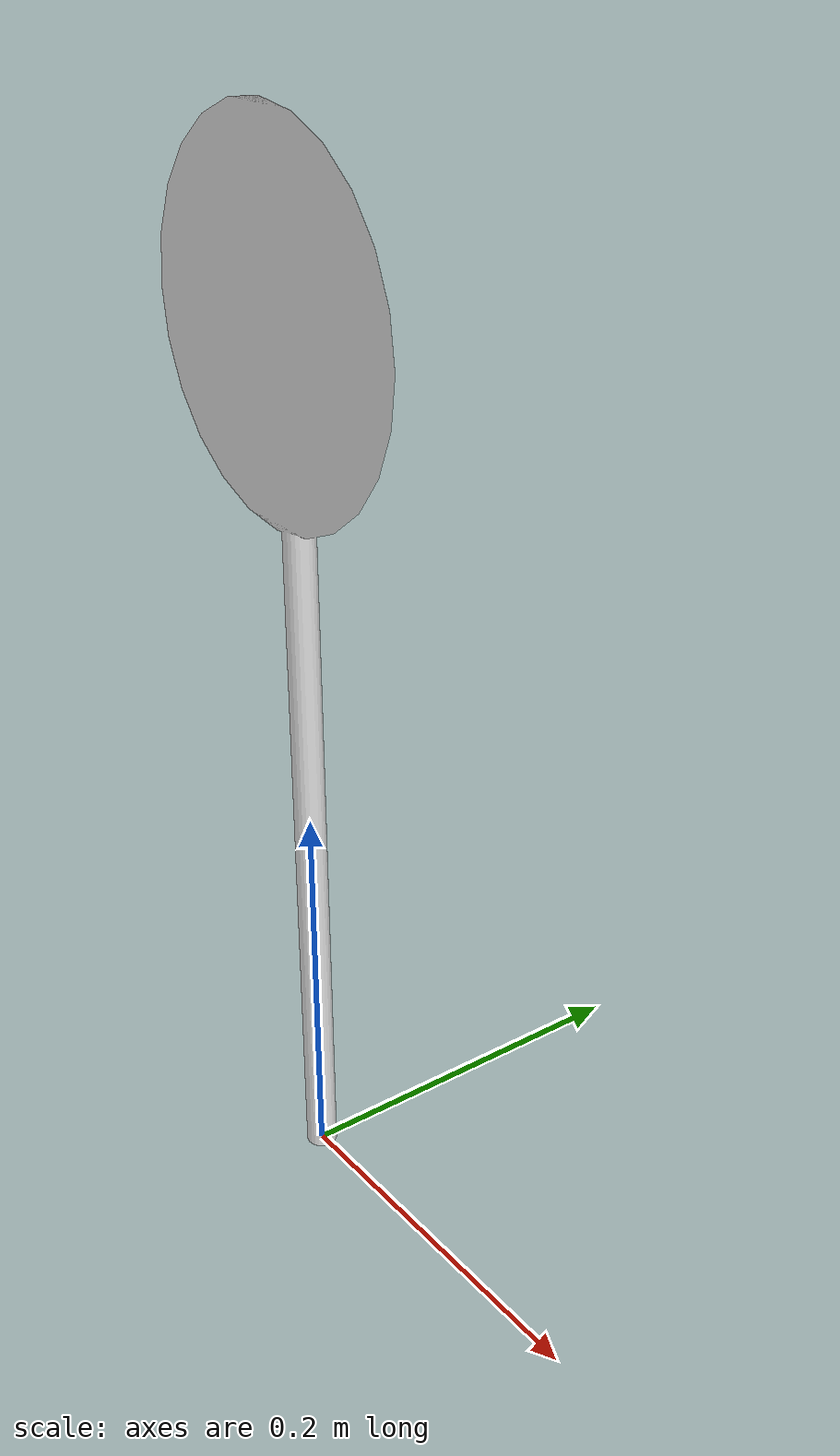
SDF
<?xml version='1.0'?>
<sdf version='1.7'>
  <model name='5-maximum-speed-limit60'>
	<static>true</static>
    <link name='link_0'>

		<collision name="collision">
		<geometry>
			<mesh>
				<uri>model://5-maximum-speed-limit60/mesh/model.dae</uri>
	            <scale>0 0 0</scale>
			</mesh>
		</geometry>
		</collision>

		<visual name="visual">
		<cast_shadows>true</cast_shadows>
		<geometry>
			<mesh>
				<uri>model://5-maximum-speed-limit60/mesh/model.dae</uri>
	            <scale>0.1 0.1 0.1</scale>
			</mesh>
		</geometry>
		</visual>
    </link>
  </model>
</sdf>
